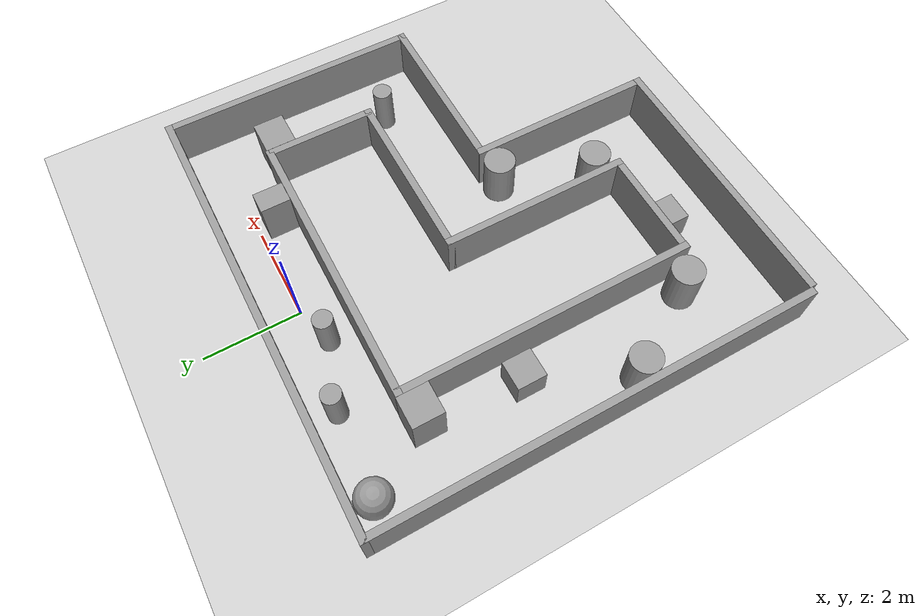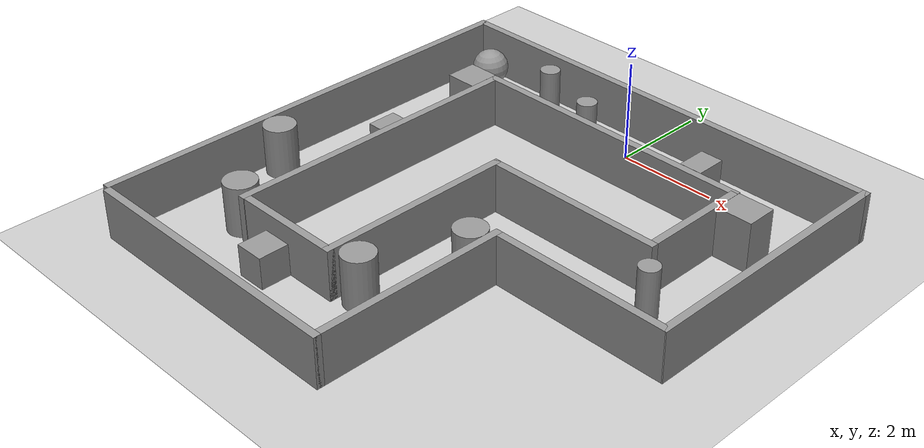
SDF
<sdf version="1.6">
 <world name="default">
  <light name="sun" type="directional">
   <pose>0 0 10 0 -0 0</pose>
   <diffuse>0.8 0.8 0.8 1</diffuse>
   <specular>0.2 0.2 0.2 1</specular>
   <attenuation>
    <range>1000</range>
    <constant>0.9</constant>
    <linear>0.01</linear>
    <quadratic>0.001</quadratic>
   </attenuation>
   <direction>0.5 0.1 -0.9</direction>
  </light>
  <model name="ground_plane">
   <static>1</static>
   <link name="link">
    <collision name="collision">
     <geometry><plane><normal>0 0 1</normal><size>100 100</size></plane></geometry>
     <surface><friction><ode><mu>100</mu><mu2>50</mu2></ode></friction></surface>
    </collision>
    <visual name="visual">
     <cast_shadows>0</cast_shadows>
     <geometry><plane><normal>0 0 1</normal><size>100 100</size></plane></geometry>
     <material>
      <script><uri>file://media/materials/scripts/gazebo.material</uri><name>Gazebo/Grey</name></script>
     </material>
    </visual>
    <velocity_decay><linear>0</linear><angular>0</angular></velocity_decay>
   </link>
  </model>
  <scene><ambient>0.4 0.4 0.4 1</ambient><background>0.7 0.7 0.7 1</background><shadows>0</shadows></scene>
  <physics name="default_physics" default="0" type="ode">
   <max_step_size>0.01</max_step_size>
   <real_time_factor>1</real_time_factor>
   <real_time_update_rate>0</real_time_update_rate>
  </physics>
  <model name="Circuit_ql_2">
   <pose>1e-06 -3.85 0 0 -0 1.567</pose>
   <link name="Wall_0">
    <collision name="Wall_0_Collision">
     <geometry><box><size>5.75 0.15 1</size></box></geometry>
     <pose>0 0 0.5 0 -0 0</pose>
    </collision>
    <visual name="Wall_0_Visual">
     <pose>0 0 0.5 0 -0 0</pose>
     <geometry><box><size>5.75 0.15 1</size></box></geometry>
     <material>
      <script><uri>file://media/materials/scripts/gazebo.material</uri><name>Gazebo/Grey</name></script>
      <ambient>1 1 1 1</ambient>
     </material>
    </visual>
    <pose>-4.6 1.725 0 0 0 -1.5708</pose>
   </link>
   <link name="Wall_1">
    <collision name="Wall_1_Collision">
     <geometry><box><size>4 0.15 1</size></box></geometry>
     <pose>0 0 0.5 0 -0 0</pose>
    </collision>
    <visual name="Wall_1_Visual">
     <pose>0 0 0.5 0 -0 0</pose>
     <geometry><box><size>4 0.15 1</size></box></geometry>
     <material>
      <script><uri>file://media/materials/scripts/gazebo.material</uri><name>Gazebo/Grey</name></script>
      <ambient>1 1 1 1</ambient>
     </material>
    </visual>
    <pose>-2.675 -1.075 0 0 -0 0</pose>
   </link>
   <link name="Wall_11">
    <collision name="Wall_11_Collision">
     <geometry><box><size>2.25 0.15 1</size></box></geometry>
     <pose>0 0 0.5 0 -0 0</pose>
    </collision>
    <visual name="Wall_11_Visual">
     <pose>0 0 0.5 0 -0 0</pose>
     <geometry><box><size>2.25 0.15 1</size></box></geometry>
     <material>
      <script><uri>file://media/materials/scripts/gazebo.material</uri><name>Gazebo/Grey</name></script>
      <ambient>1 1 1 1</ambient>
     </material>
    </visual>
    <pose>-3.036 1.559 0 0 0 -1.5708</pose>
   </link>
   <link name="Wall_12">
    <collision name="Wall_12_Collision">
     <geometry><box><size>4 0.15 1</size></box></geometry>
     <pose>0 0 0.5 0 -0 0</pose>
    </collision>
    <visual name="Wall_12_Visual">
     <pose>0 0 0.5 0 -0 0</pose>
     <geometry><box><size>4 0.15 1</size></box></geometry>
     <material>
      <script><uri>file://media/materials/scripts/gazebo.material</uri><name>Gazebo/Grey</name></script>
      <ambient>1 1 1 1</ambient>
     </material>
    </visual>
    <pose>-1.111 0.509 0 0 -0 0</pose>
   </link>
   <link name="Wall_13">
    <collision name="Wall_13_Collision">
     <geometry><box><size>3.75 0.15 1</size></box></geometry>
     <pose>0 0 0.5 0 -0 0</pose>
    </collision>
    <visual name="Wall_13_Visual">
     <pose>0 0 0.5 0 -0 0</pose>
     <geometry><box><size>3.75 0.15 1</size></box></geometry>
     <material>
      <script><uri>file://media/materials/scripts/gazebo.material</uri><name>Gazebo/Grey</name></script>
      <ambient>1 1 1 1</ambient>
     </material>
    </visual>
    <pose>0.814 -1.291 0 0 0 -1.5708</pose>
   </link>
   <link name="Wall_14">
    <collision name="Wall_14_Collision">
     <geometry><box><size>2.25 0.15 1</size></box></geometry>
     <pose>0 0 0.5 0 -0 0</pose>
    </collision>
    <visual name="Wall_14_Visual">
     <pose>0 0 0.5 0 -0 0</pose>
     <geometry><box><size>2.25 0.15 1</size></box></geometry>
     <material>
      <script><uri>file://media/materials/scripts/gazebo.material</uri><name>Gazebo/Grey</name></script>
      <ambient>1 1 1 1</ambient>
     </material>
    </visual>
    <pose>1.9 -3.091 0 0 -0 0</pose>
   </link>
   <link name="Wall_15">
    <collision name="Wall_15_Collision">
     <geometry><box><size>5.98502 0.15 1</size></box></geometry>
     <pose>0 0 0.5 0 -0 0</pose>
    </collision>
    <visual name="Wall_15_Visual">
     <pose>0 0 0.5 0 -0 0</pose>
     <geometry><box><size>5.98502 0.15 1</size></box></geometry>
     <material>
      <script><uri>file://media/materials/scripts/gazebo.material</uri><name>Gazebo/Grey</name></script>
      <ambient>1 1 1 1</ambient>
     </material>
    </visual>
    <pose>3.0215 -0.1735 0 0 -0 1.56823</pose>
   </link>
   <link name="Wall_16">
    <collision name="Wall_16_Collision">
     <geometry><box><size>6.2 0.15 1</size></box></geometry>
     <pose>0 0 0.5 0 -0 0</pose>
    </collision>
    <visual name="Wall_16_Visual">
     <pose>0 0 0.5 0 -0 0</pose>
     <geometry><box><size>6.2 0.15 1</size></box></geometry>
     <material>
      <script><uri>file://media/materials/scripts/gazebo.material</uri><name>Gazebo/Grey</name></script>
      <ambient>1 1 1 1</ambient>
     </material>
    </visual>
    <pose>-0.02 2.744 0 0 -0 3.14159</pose>
   </link>
   <link name="Wall_2">
    <collision name="Wall_2_Collision">
     <geometry><box><size>3.7 0.15 1</size></box></geometry>
     <pose>0 0 0.5 0 -0 0</pose>
    </collision>
    <visual name="Wall_2_Visual">
     <pose>0 0 0.5 0 -0 0</pose>
     <geometry><box><size>3.7 0.15 1</size></box></geometry>
     <material>
      <script><uri>file://media/materials/scripts/gazebo.material</uri><name>Gazebo/Grey</name></script>
      <ambient>1 1 1 1</ambient>
     </material>
    </visual>
    <pose>-0.75 -2.875 0 0 0 -1.5708</pose>
   </link>
   <link name="Wall_3">
    <collision name="Wall_3_Collision">
     <geometry><box><size>5.5 0.15 1</size></box></geometry>
     <pose>0 0 0.5 0 -0 0</pose>
    </collision>
    <visual name="Wall_3_Visual">
     <pose>0 0 0.5 0 -0 0</pose>
     <geometry><box><size>5.5 0.15 1</size></box></geometry>
     <material>
      <script><uri>file://media/materials/scripts/gazebo.material</uri><name>Gazebo/Grey</name></script>
      <ambient>1 1 1 1</ambient>
     </material>
    </visual>
    <pose>1.925 -4.675 0 0 -0 0</pose>
   </link>
   <link name="Wall_7">
    <collision name="Wall_7_Collision">
     <geometry><box><size>9.5 0.15 1</size></box></geometry>
     <pose>0 0 0.5 0 -0 0</pose>
    </collision>
    <visual name="Wall_7_Visual">
     <pose>0 0 0.5 0 -0 0</pose>
     <geometry><box><size>9.5 0.15 1</size></box></geometry>
     <material>
      <script><uri>file://media/materials/scripts/gazebo.material</uri><name>Gazebo/Grey</name></script>
      <ambient>1 1 1 1</ambient>
     </material>
    </visual>
    <pose>4.6 0 0 0 -0 1.5708</pose>
   </link>
   <link name="Wall_9">
    <collision name="Wall_9_Collision">
     <geometry><box><size>9.25 0.15 1</size></box></geometry>
     <pose>0 0 0.5 0 -0 0</pose>
    </collision>
    <visual name="Wall_9_Visual">
     <pose>0 0 0.5 0 -0 0</pose>
     <geometry><box><size>9.25 0.15 1</size></box></geometry>
     <material>
      <script><uri>file://media/materials/scripts/gazebo.material</uri><name>Gazebo/Grey</name></script>
      <ambient>1 1 1 1</ambient>
     </material>
    </visual>
    <pose>0.05 4.675 0 0 -0 3.14159</pose>
   </link>
   <static>1</static>
  </model>
  <gravity>0 0 -9.8</gravity>
  <magnetic_field>6e-06 2.3e-05 -4.2e-05</magnetic_field>
  <atmosphere type="adiabatic"/>
  <spherical_coordinates>
   <surface_model>EARTH_WGS84</surface_model>
   <latitude_deg>0</latitude_deg>
   <longitude_deg>0</longitude_deg>
   <elevation>0</elevation>
   <heading_deg>0</heading_deg>
  </spherical_coordinates>
  <model name="unit_box_0">
   <pose>2.0779 -0.455581 0.49912 0 0 -0.002504</pose>
   <link name="link">
    <inertial>
     <mass>1</mass>
     <inertia>
      <ixx>0.166667</ixx>
      <ixy>0</ixy>
      <ixz>0</ixz>
      <iyy>0.166667</iyy>
      <iyz>0</iyz>
      <izz>0.166667</izz>
     </inertia>
    </inertial>
    <collision name="collision"><geometry><box><size>0.457275 0.614531 1</size></box></geometry></collision>
    <visual name="visual">
     <geometry><box><size>0.457275 0.614531 1</size></box></geometry>
     <material>
      <script><name>Gazebo/Grey</name><uri>file://media/materials/scripts/gazebo.material</uri></script>
     </material>
    </visual>
   </link>
  </model>
  <model name="unit_box_1">
   <pose>3.53663 -1.11727 0.49912 0 0 -0.000495</pose>
   <link name="link">
    <inertial>
     <mass>1</mass>
     <inertia>
      <ixx>0.166667</ixx>
      <ixy>0</ixy>
      <ixz>0</ixz>
      <iyy>0.166667</iyy>
      <iyz>0</iyz>
      <izz>0.166667</izz>
     </inertia>
    </inertial>
    <collision name="collision"><geometry><box><size>0.715832 0.628884 1</size></box></geometry></collision>
    <visual name="visual">
     <geometry><box><size>0.715832 0.628884 1</size></box></geometry>
     <material>
      <script><name>Gazebo/Grey</name><uri>file://media/materials/scripts/gazebo.material</uri></script>
     </material>
    </visual>
   </link>
  </model>
  <model name="unit_cylinder_0">
   <pose>-0.101329 -6.59424 0.49912 0 0 -0.005723</pose>
   <link name="link">
    <inertial>
     <mass>1</mass>
     <inertia><ixx>0.145833</ixx><ixy>0</ixy><ixz>0</ixz><iyy>0.145833</iyy><iyz>0</iyz><izz>0.125</izz></inertia>
    </inertial>
    <collision name="collision">
     <geometry><cylinder><radius>0.320608</radius><length>1</length></cylinder></geometry>
    </collision>
    <visual name="visual">
     <geometry><cylinder><radius>0.320608</radius><length>1</length></cylinder></geometry>
     <material>
      <script><name>Gazebo/Grey</name><uri>file://media/materials/scripts/gazebo.material</uri></script>
     </material>
    </visual>
   </link>
  </model>
  <model name="unit_cylinder_0_clone">
   <pose>-3.22029 -6.62835 0.49912 0 0 -0.000606</pose>
   <link name="link">
    <inertial>
     <mass>1</mass>
     <inertia><ixx>0.145833</ixx><ixy>0</ixy><ixz>0</ixz><iyy>0.145833</iyy><iyz>0</iyz><izz>0.125</izz></inertia>
    </inertial>
    <collision name="collision">
     <geometry><cylinder><radius>0.326426</radius><length>1</length></cylinder></geometry>
    </collision>
    <visual name="visual">
     <geometry><cylinder><radius>0.326426</radius><length>1</length></cylinder></geometry>
     <material>
      <script><name>Gazebo/Grey</name><uri>file://media/materials/scripts/gazebo.material</uri></script>
     </material>
    </visual>
   </link>
  </model>
  <model name="unit_box_1_clone_0">
   <pose>-3.13277 -1.04735 0.5 0 0 -0.002887</pose>
   <link name="link">
    <inertial>
     <mass>1</mass>
     <inertia>
      <ixx>0.166667</ixx>
      <ixy>0</ixy>
      <ixz>0</ixz>
      <iyy>0.166667</iyy>
      <iyz>0</iyz>
      <izz>0.166667</izz>
     </inertia>
    </inertial>
    <collision name="collision"><geometry><box><size>0.648163 0.641851 1</size></box></geometry></collision>
    <visual name="visual">
     <geometry><box><size>0.648163 0.641851 1</size></box></geometry>
     <material>
      <script><name>Gazebo/Grey</name><uri>file://media/materials/scripts/gazebo.material</uri></script>
     </material>
    </visual>
   </link>
  </model>
  <model name="unit_sphere_0_clone">
   <pose>-3.99318 0.319728 0.365238 0.049338 -0.040275 -0.001833</pose>
   <link name="link">
    <inertial>
     <mass>1</mass>
     <inertia><ixx>0.1</ixx><ixy>0</ixy><ixz>0</ixz><iyy>0.1</iyy><iyz>0</iyz><izz>0.1</izz></inertia>
    </inertial>
    <collision name="collision"><geometry><sphere><radius>0.365238</radius></sphere></geometry></collision>
    <visual name="visual">
     <geometry><sphere><radius>0.365238</radius></sphere></geometry>
     <material>
      <script><name>Gazebo/Grey</name><uri>file://media/materials/scripts/gazebo.material</uri></script>
     </material>
    </visual>
   </link>
  </model>
  <model name="unit_box">
   <pose>-3.30646 -3.03256 0.316203 0 -0 1e-06</pose>
   <link name="link">
    <inertial>
     <mass>1</mass>
     <inertia>
      <ixx>0.166667</ixx>
      <ixy>0</ixy>
      <ixz>0</ixz>
      <iyy>0.166667</iyy>
      <iyz>0</iyz>
      <izz>0.166667</izz>
     </inertia>
    </inertial>
    <collision name="collision">
     <geometry><box><size>0.595326 0.600888 0.632405</size></box></geometry>
    </collision>
    <visual name="visual">
     <geometry><box><size>0.595326 0.600888 0.632405</size></box></geometry>
     <material>
      <script><name>Gazebo/Grey</name><uri>file://media/materials/scripts/gazebo.material</uri></script>
     </material>
    </visual>
   </link>
  </model>
  <model name="unit_cylinder_0_clone_0">
   <pose>-4.2835 -4.93066 0.49912 0 0 -0.005694</pose>
   <link name="link">
    <inertial>
     <mass>1</mass>
     <inertia><ixx>0.145833</ixx><ixy>0</ixy><ixz>0</ixz><iyy>0.145833</iyy><iyz>0</iyz><izz>0.125</izz></inertia>
    </inertial>
    <collision name="collision">
     <geometry><cylinder><radius>0.320608</radius><length>1</length></cylinder></geometry>
    </collision>
    <visual name="visual">
     <geometry><cylinder><radius>0.320608</radius><length>1</length></cylinder></geometry>
     <material>
      <script><name>Gazebo/Grey</name><uri>file://media/materials/scripts/gazebo.material</uri></script>
     </material>
    </visual>
   </link>
  </model>
  <model name="unit_cylinder_0_clone_1">
   <pose>0.675723 -4.81429 0.49912 0 0 -0.005717</pose>
   <link name="link">
    <inertial>
     <mass>1</mass>
     <inertia><ixx>0.145833</ixx><ixy>0</ixy><ixz>0</ixz><iyy>0.145833</iyy><iyz>0</iyz><izz>0.125</izz></inertia>
    </inertial>
    <collision name="collision">
     <geometry><cylinder><radius>0.320608</radius><length>1</length></cylinder></geometry>
    </collision>
    <visual name="visual">
     <geometry><cylinder><radius>0.320608</radius><length>1</length></cylinder></geometry>
     <material>
      <script><name>Gazebo/Grey</name><uri>file://media/materials/scripts/gazebo.material</uri></script>
     </material>
    </visual>
   </link>
  </model>
  <model name="unit_box_clone">
   <pose>-1.80029 -7.25464 0.316202 0 0 -0.003802</pose>
   <link name="link">
    <inertial>
     <mass>1</mass>
     <inertia>
      <ixx>0.166667</ixx>
      <ixy>0</ixy>
      <ixz>0</ixz>
      <iyy>0.166667</iyy>
      <iyz>0</iyz>
      <izz>0.166667</izz>
     </inertia>
    </inertial>
    <collision name="collision">
     <geometry><box><size>0.595326 0.600888 0.632405</size></box></geometry>
    </collision>
    <visual name="visual">
     <geometry><box><size>0.595326 0.600888 0.632405</size></box></geometry>
     <material>
      <script><name>Gazebo/Grey</name><uri>file://media/materials/scripts/gazebo.material</uri></script>
     </material>
    </visual>
   </link>
  </model>
  <model name="unit_cylinder_0_clone_2">
   <pose>-2.20894 0.209894 0.49912 0 0 -0.005636</pose>
   <link name="link">
    <inertial>
     <mass>1</mass>
     <inertia><ixx>0.145833</ixx><ixy>0</ixy><ixz>0</ixz><iyy>0.145833</iyy><iyz>0</iyz><izz>0.125</izz></inertia>
    </inertial>
    <collision name="collision">
     <geometry><cylinder><radius>0.198964</radius><length>1</length></cylinder></geometry>
    </collision>
    <visual name="visual">
     <geometry><cylinder><radius>0.198964</radius><length>1</length></cylinder></geometry>
     <material>
      <script><name>Gazebo/Grey</name><uri>file://media/materials/scripts/gazebo.material</uri></script>
     </material>
    </visual>
   </link>
  </model>
  <model name="unit_cylinder_0_clone_2_clone">
   <pose>-0.830292 -0.245637 0.49912 0 0 -0.005668</pose>
   <link name="link">
    <inertial>
     <mass>1</mass>
     <inertia><ixx>0.145833</ixx><ixy>0</ixy><ixz>0</ixz><iyy>0.145833</iyy><iyz>0</iyz><izz>0.125</izz></inertia>
    </inertial>
    <collision name="collision">
     <geometry><cylinder><radius>0.198964</radius><length>1</length></cylinder></geometry>
    </collision>
    <visual name="visual">
     <geometry><cylinder><radius>0.198964</radius><length>1</length></cylinder></geometry>
     <material>
      <script><name>Gazebo/Grey</name><uri>file://media/materials/scripts/gazebo.material</uri></script>
     </material>
    </visual>
   </link>
  </model>
  <model name="unit_cylinder_0_clone_2_clone_clone">
   <pose>3.46334 -3.5414 0.49912 0 0 -0.005668</pose>
   <link name="link">
    <inertial>
     <mass>1</mass>
     <inertia><ixx>0.145833</ixx><ixy>0</ixy><ixz>0</ixz><iyy>0.145833</iyy><iyz>0</iyz><izz>0.125</izz></inertia>
    </inertial>
    <collision name="collision">
     <geometry><cylinder><radius>0.198964</radius><length>1</length></cylinder></geometry>
    </collision>
    <visual name="visual">
     <geometry><cylinder><radius>0.198964</radius><length>1</length></cylinder></geometry>
     <material>
      <script><name>Gazebo/Grey</name><uri>file://media/materials/scripts/gazebo.material</uri></script>
     </material>
    </visual>
   </link>
  </model>
 </world>
</sdf>
